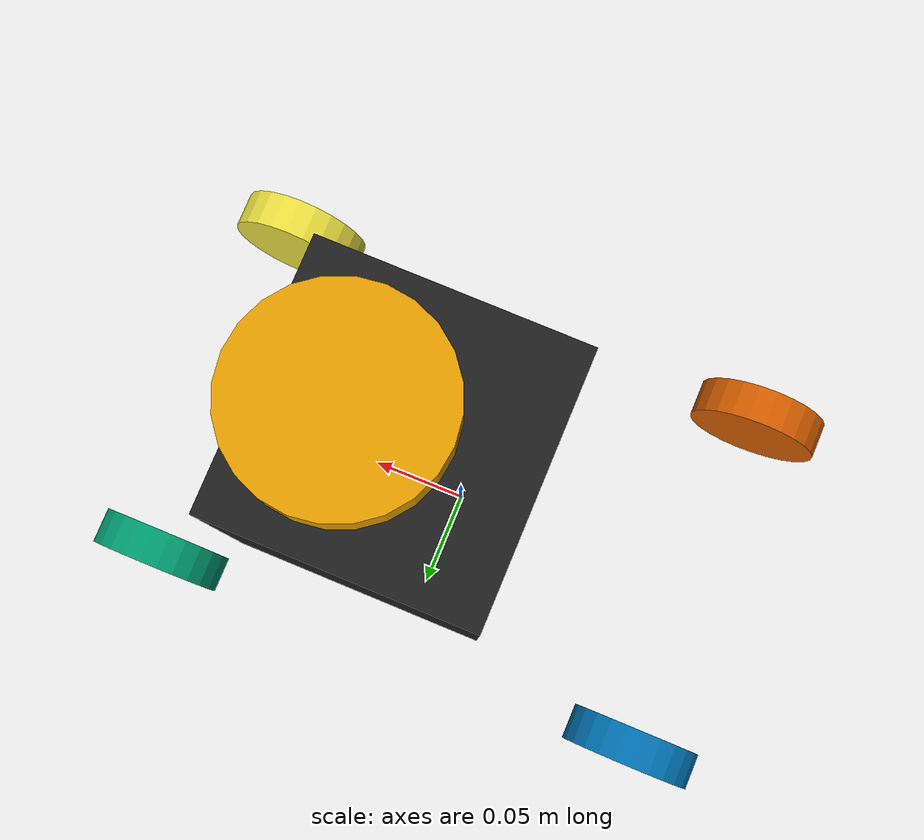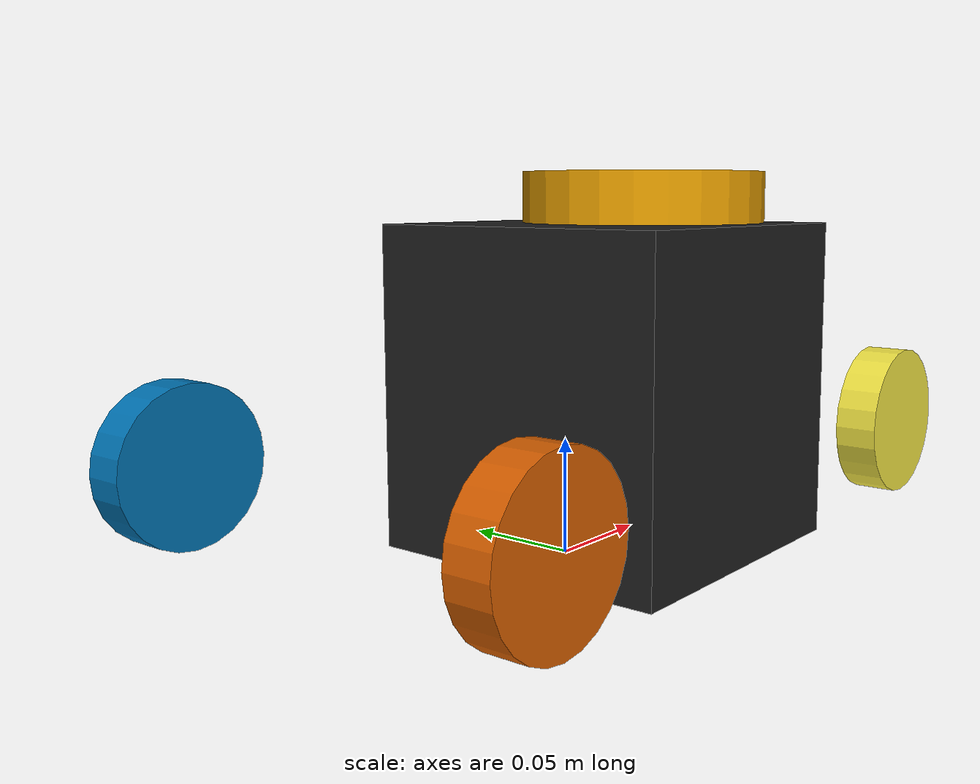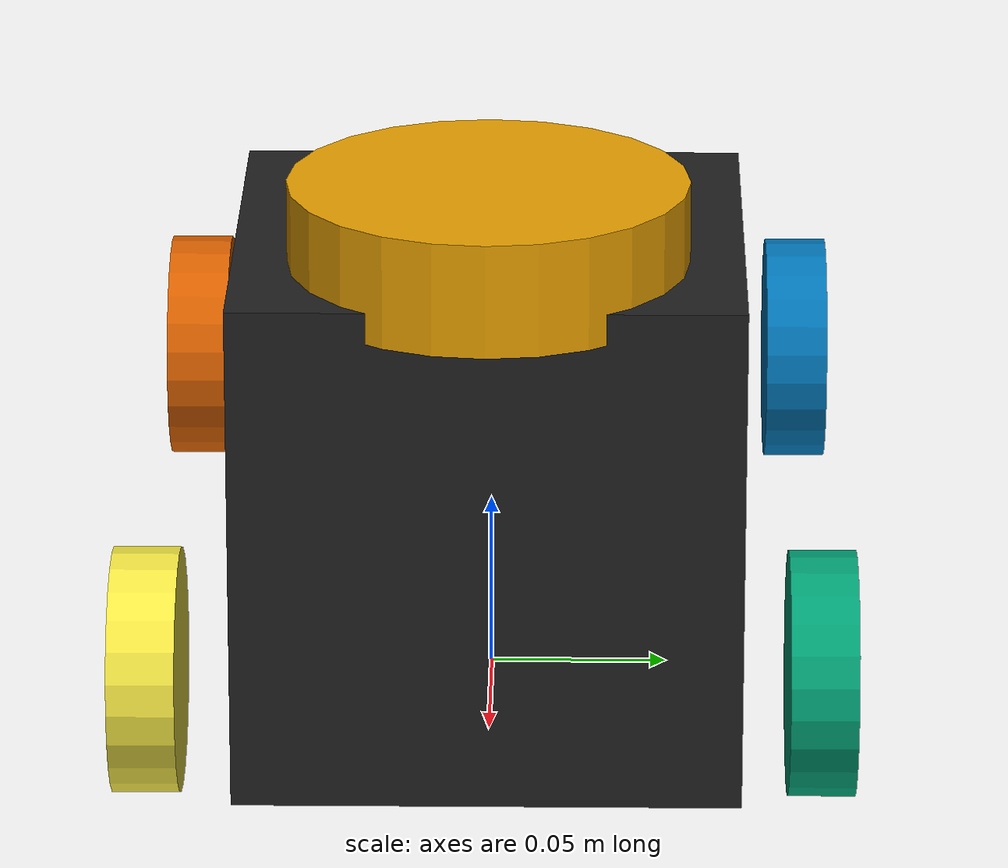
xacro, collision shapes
<?xml version="1.0" ?>
<robot name="followbot" xmlns:xacro="http://ros.org/wiki/xacro">
  <xacro:include filename="$(find followbot_mechanum)/urdf/common_properties.xacro"/>

  <link name="base_footprint"/>

  <joint name="base_joint" type="fixed">
    <parent link="base_footprint"/>
    <child link="base_link"/>
    <origin xyz="0.0 0.0 0.00" rpy="0 0 0"/>
  </joint>

  <link name="base_link">
    <visual>
      <origin xyz="0 0 0.0" rpy="0 0 0"/>
      <geometry>
        <mesh filename="package://followbot_mechanum/meshes/bases/burger_base.stl" scale="0.001 0.001 0.001"/>
      </geometry>
      <material name="light_black"/>
    </visual>
    <collision>
      <origin xyz="0.032 0 0.070" rpy="0 0 0"/>
      <geometry>
        <box size="0.140 0.140 0.143"/>
      </geometry>
    </collision>

    <inertial>
      <origin xyz="0 0 0" rpy="0 0 0"/>
      <mass value="8.2573504e-01"/>
      <inertia ixx="2.2124416e-03" ixy="-1.2294101e-05" ixz="3.4938785e-05"
               iyy="2.1193702e-03" iyz="-5.0120904e-06"
               izz="2.0064271e-03" />
    </inertial>
  </link>

  <joint name="wheel1" type="continuous">
    <parent link="base_link"/>
    <child link="wheel_front_left_link"/>
    <origin xyz="0.129 0.09 0.05" rpy="-1.57 0 0"/>
    <axis xyz="0 0 1"/>
  </joint>

  <link name="wheel_front_left_link">
    <visual>
      <origin xyz="0 0 0" rpy="1.57 0 0"/>
      <geometry>
        <mesh filename="package://followbot_mechanum/meshes/wheels/left_tire.stl" scale="0.001 0.001 0.001"/>
      </geometry>
      <material name="dark"/>
    </visual>

    <collision>
      <origin xyz="0 0 0" rpy="0 0 0"/>
      <geometry>
        <cylinder length="0.018" radius="0.033"/>
      </geometry>
    </collision>

    <inertial>
      <origin xyz="0 0 0" />
      <mass value="2.8498940e-02" />
      <inertia ixx="1.1175580e-05" ixy="-4.2369783e-11" ixz="-5.9381719e-09"
               iyy="1.1192413e-05" iyz="-1.4400107e-11"
               izz="2.0712558e-05" />
      </inertial>
  </link>

  <joint name="wheel2" type="continuous">
    <parent link="base_link"/>
    <child link="wheel_front_right_link"/>
    <origin xyz="0.129 -0.09 0.05" rpy="-1.57 0 0"/>
    <axis xyz="0 0 1"/>
  </joint>

  <link name="wheel_front_right_link">
    <visual>
      <origin xyz="0 0 0" rpy="1.57 0 0"/>
      <geometry>
        <mesh filename="package://followbot_mechanum/meshes/wheels/right_tire.stl" scale="0.001 0.001 0.001"/>
      </geometry>
      <material name="dark"/>
    </visual>

    <collision>
      <origin xyz="0 0 0" rpy="0 0 0"/>
      <geometry>
        <cylinder length="0.018" radius="0.033"/>
      </geometry>
    </collision>

    <inertial>
      <origin xyz="0 0 0" />
      <mass value="2.8498940e-02" />
      <inertia ixx="1.1175580e-05" ixy="-4.2369783e-11" ixz="-5.9381719e-09"
               iyy="1.1192413e-05" iyz="-1.4400107e-11"
               izz="2.0712558e-05" />
      </inertial>
  </link>

  <joint name="wheel3" type="continuous">
    <parent link="base_link"/>
    <child link="wheel_back_left_link"/>
    <origin xyz="-0.129 0.09 0.05" rpy="-1.57 0 0"/>
    <axis xyz="0 0 1"/>
  </joint>

  <link name="wheel_back_left_link">
    <visual>
      <origin xyz="0 0 0" rpy="1.57 0 0"/>
      <geometry>
        <mesh filename="package://followbot_mechanum/meshes/wheels/left_tire.stl" scale="0.001 0.001 0.001"/>
      </geometry>
      <material name="dark"/>
    </visual>

    <collision>
      <origin xyz="0 0 0" rpy="0 0 0"/>
      <geometry>
        <cylinder length="0.018" radius="0.033"/>
      </geometry>
    </collision>

    <inertial>
      <origin xyz="0 0 0" />
      <mass value="2.8498940e-02" />
      <inertia ixx="1.1175580e-05" ixy="-4.2369783e-11" ixz="-5.9381719e-09"
               iyy="1.1192413e-05" iyz="-1.4400107e-11"
               izz="2.0712558e-05" />
      </inertial>
  </link>

  <joint name="wheel4" type="continuous">
    <parent link="base_link"/>
    <child link="wheel_back_right_link"/>
    <origin xyz="-0.129 -0.09 0.05" rpy="1.57 0 0"/>
    <axis xyz="0 0 1"/>
  </joint>

  <link name="wheel_back_right_link">
    <visual>
      <origin xyz="0 0 0" rpy="1.57 0 0"/>
      <geometry>
        <mesh filename="package://followbot_mechanum/meshes/wheels/right_tire.stl" scale="0.001 0.001 0.001"/>
      </geometry>
      <material name="dark"/>
    </visual>

    <collision>
      <origin xyz="0 0 0" rpy="0 0 0"/>
      <geometry>
        <cylinder length="0.018" radius="0.033"/>
      </geometry>
    </collision>

    <inertial>
      <origin xyz="0 0 0" />
      <mass value="2.8498940e-02" />
      <inertia ixx="1.1175580e-05" ixy="-4.2369783e-11" ixz="-5.9381719e-09"
               iyy="1.1192413e-05" iyz="-1.4400107e-11"
               izz="2.0712558e-05" />
      </inertial>
  </link>

  <joint name="camera_joint" type="fixed">
    <parent link="base_link"/>
    <child link="camera_link"/>
    <origin xyz="-0.02 0 0.79" rpy="0 1.16 0"/>
  </joint>
  <link name="camera_link"/>

  <joint name="imu_joint" type="fixed">
    <parent link="base_link"/>
    <child link="imu_link"/>
    <origin xyz="-0.032 0 0.068" rpy="0 0 0"/>
  </joint>
  <link name="imu_link"/>

  <joint name="scan_joint" type="fixed">
    <parent link="base_link"/>
    <child link="base_scan"/>
    <origin xyz="0.073 0 0.155" rpy="0 0 ${pi}"/>
  </joint>

  <link name="base_scan">
    <visual>
      <origin xyz="0 0 0.0" rpy="0 0 0"/>
      <geometry>
        <mesh filename="package://followbot_mechanum/meshes/sensors/lds.stl" scale="0.001 0.001 0.001"/>
      </geometry>
      <material name="dark"/>
    </visual>

    <collision>
      <origin xyz="0.015 0 -0.0065" rpy="0 0 0"/>
      <geometry>
        <cylinder length="0.0315" radius="0.055"/>
      </geometry>
    </collision>

    <inertial>
      <mass value="0.114" />
      <origin xyz="0 0 0" />
      <inertia ixx="0.001" ixy="0.0" ixz="0.0"
               iyy="0.001" iyz="0.0"
               izz="0.001" />
    </inertial>
  </link>

</robot>
